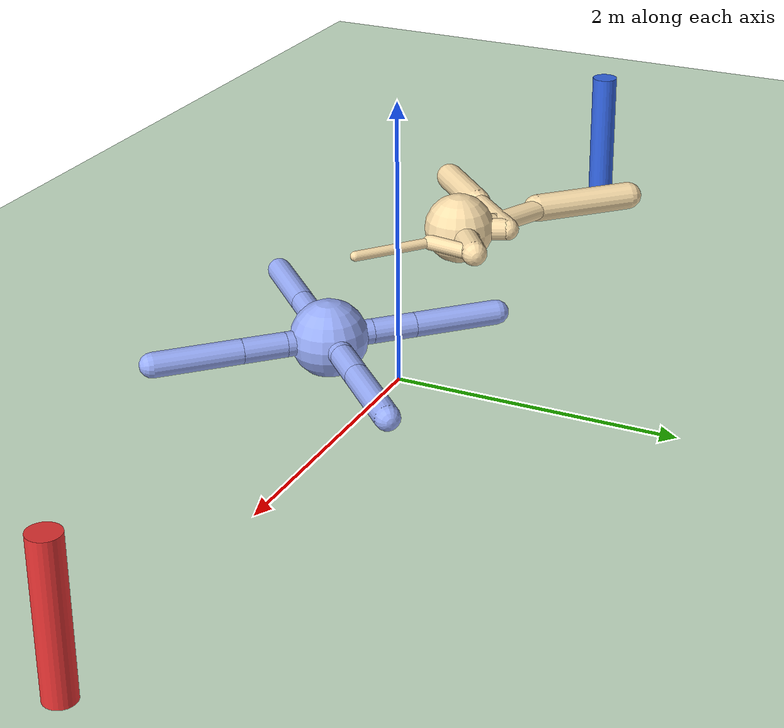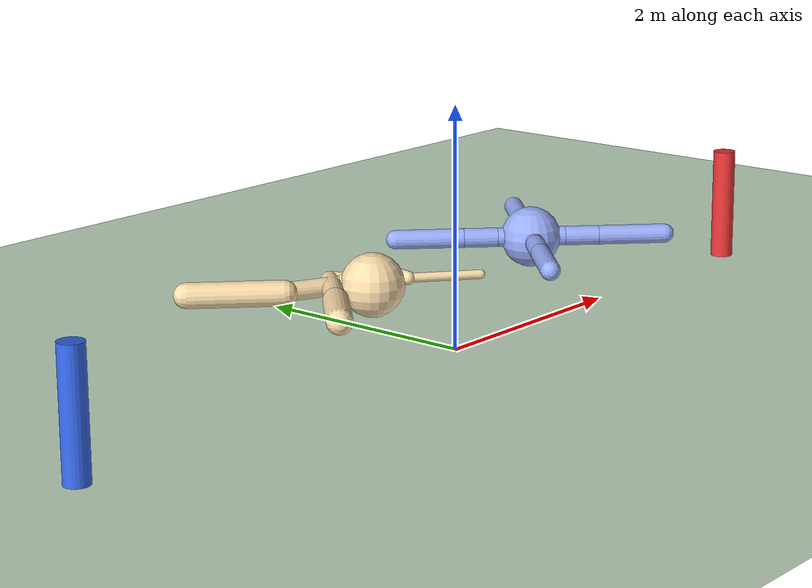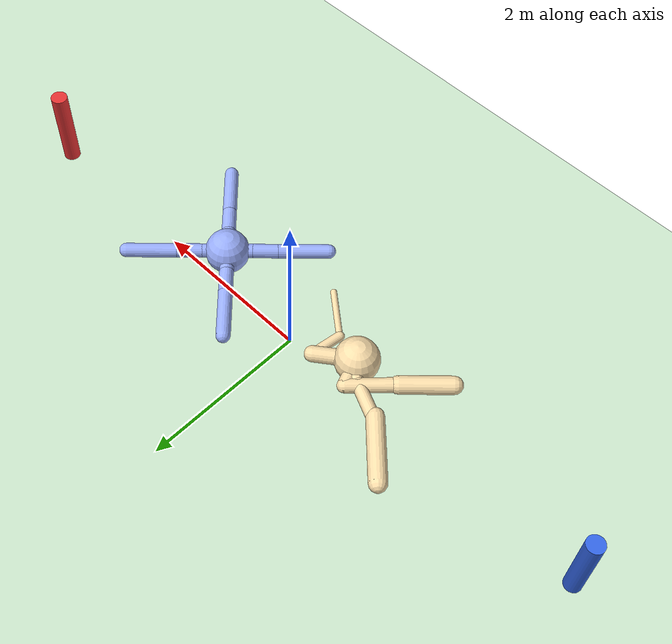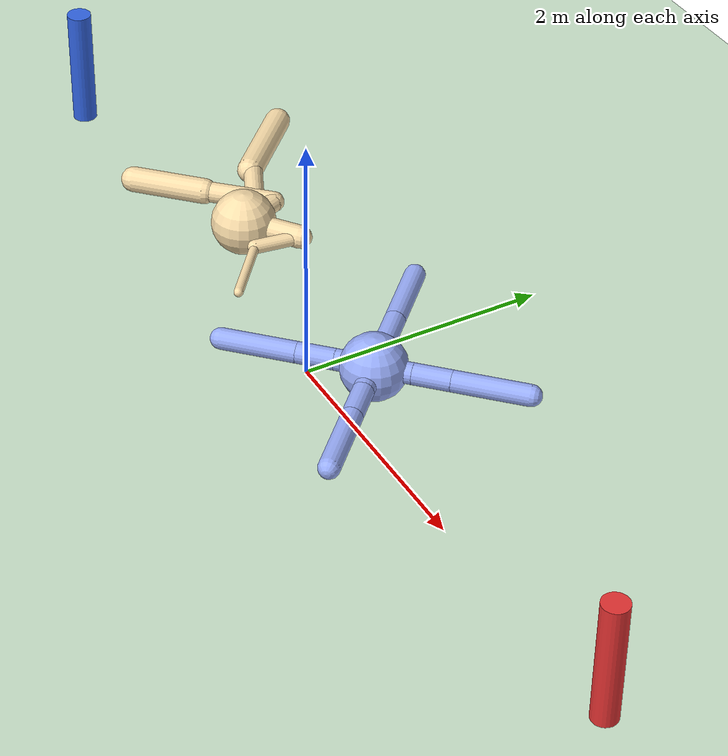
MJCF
<mujoco model="rtg_ant">
  <compiler angle="degree" coordinate="local" inertiafromgeom="true"/>
  <option integrator="RK4" timestep="0.003" solver="PGS" iterations="1000"/>
  <default>
    <joint armature="1" damping="1" limited="true"/>
    <geom conaffinity="0" condim="3" density="5.0" friction="1 0.5 0.5" margin="0.01" rgba="0.98 0.87 0.67 1" material="geom"/>
  </default>
  <visual>
    <headlight ambient=".1 .1 .1" diffuse=".6 .6 .6" specular="0.3 0.3 0.3"/>
    <map znear=".01"/>
    <quality shadowsize="1024"/>
  </visual>
  <worldbody>
    <light cutoff="100" diffuse="1 1 1" dir="-0 0 -1.3" directional="true" exponent="1" pos="0 0 1.3" specular=".1 .1 .1"/>
    <geom conaffinity="1" condim="3" name="floor" pos="0 0 0" rgba="0.8 0.9 0.8 1" size="200 200 .125" type="plane" material="grid_new"/>
    <body name="0" pos="-1 0 0.75" euler="0 0 0">
      <camera name="track" mode="trackcom" pos="0 -3 0.3" xyaxes="1 0 0 0 0 1"/>
      <geom pos="0 0 0" size="0.25" type="sphere"/>
      <joint armature="0" damping="0" limited="false" margin="0.01" name="0_joint" pos="0 0 0" range="-30 30" type="free"/>
      <body name="1" pos="0 0 0">
        <geom fromto="-0.100724 -0.09976 0 0.128309 0.127081 0" size="0.09042" type="capsule"/>
      </body>
      <body name="2" pos="0 0 0">
        <geom fromto="0.070185 -0.08096 0 -0.15752 0.181701 0" size="0.081703" type="capsule"/>
        <body name="12" pos="-0.15752 0.181701 0">
          <joint axis="0 0 1" name="12_joint" pos="0 0 0" range="-30 30" type="hinge"/>
          <geom fromto="0.001817 -0.000848 0 -0.485773 0.22673 0" size="0.074983" type="capsule"/>
          <body name="112" pos="-0.485773 0.22673 0">
            <geom fromto="0.047444 -0.047157 0 -0.473944 0.471073 0" size="0.099977" type="capsule"/>
            <joint axis="-0.707107 -0.707107 0" name="112_joint" pos="0 0 0" range="30 70" type="hinge"/>
          </body>
        </body>
        <body name="22" pos="-0.15752 0.181701 0">
          <geom fromto="-0.009602 0.005506 0 0.23278 -0.133487 0" size="0.053817" type="capsule"/>
        </body>
      </body>
      <body name="3" pos="0 0 0">
        <geom fromto="0.002293 -0.005923 0 -0.12544 0.324106 0" size="0.078374" type="capsule"/>
        <body name="13" pos="-0.12544 0.324106 0">
          <joint axis="0 0 1" name="13_joint" pos="0 0 0" range="-30 30" type="hinge"/>
          <geom fromto="0.000051 0.000054 0 -0.383303 -0.404781 0" size="0.080223" type="capsule"/>
          <body name="113" pos="-0.383303 -0.404781 0">
            <geom fromto="0.00084 0.000842 0 -0.404629 -0.405579 0" size="0.099787" type="capsule"/>
            <joint axis="0.707107 -0.707107 0" name="113_joint" pos="0 0 0" range="30 70" type="hinge"/>
          </body>
        </body>
      </body>
      <body name="4" pos="0 0 0">
        <geom fromto="-0.062583 -0.047094 0 0.378801 0.285052 0" size="0.089148" type="capsule"/>
        <body name="14" pos="0.378801 0.285052 0">
          <joint axis="0 0 1" name="14_joint" pos="0 0 0" range="-30 30" type="hinge"/>
          <geom fromto="0.000107 0.000771 0 -0.049852 -0.36098 0" size="0.054448" type="capsule"/>
          <body name="114" pos="-0.049852 -0.36098 0">
            <geom fromto="-0.000092 0.000076 0 0.443967 -0.365003 0" size="0.036141" type="capsule"/>
            <joint axis="0.707107 0.707107 0" name="114_joint" pos="0 0 0" range="30 70" type="hinge"/>
          </body>
        </body>
      </body>
    </body>
    <body name="opp_0" pos="1 0 0.75" euler="0 0 180">
      <geom pos="0 0 0" size="0.25" type="sphere" contype="0" conaffinity="1" rgba="0.60 0.68 0.98 1"/>
      <joint armature="0" damping="0" limited="false" margin="0.01" name="opp_0_joint" pos="0 0 0" range="-30 30" type="free"/>
      <body name="opp_1" pos="0 0 0">
        <geom fromto="0 0 0 0.2 0.2 0" size="0.08" type="capsule" contype="0" conaffinity="1" rgba="0.60 0.68 0.98 1"/>
        <body name="opp_11" pos="0.2 0.2 0">
          <joint axis="0 0 1" name="opp_11_joint" pos="0 0 0" range="-30 30" type="hinge"/>
          <geom fromto="0.0 0.0 0.0 0.2 0.2 0.0" size="0.08" type="capsule" contype="0" conaffinity="1" rgba="0.60 0.68 0.98 1"/>
          <body name="opp_111" pos="0.2 0.2 0">
            <geom fromto="0 0 0 0.4 0.4 0" size="0.08" type="capsule" contype="0" conaffinity="1" rgba="0.60 0.68 0.98 1"/>
            <joint axis="-0.707107 0.707107 0" name="opp_111_joint" pos="0 0 0" range="30 70" type="hinge"/>
          </body>
        </body>
      </body>
      <body name="opp_2" pos="0 0 0">
        <geom fromto="0 0 0 -0.2 0.2 0" size="0.08" type="capsule" contype="0" conaffinity="1" rgba="0.60 0.68 0.98 1"/>
        <body name="opp_12" pos="-0.2 0.2 0">
          <joint axis="0 0 1" name="opp_12_joint" pos="0 0 0" range="-30 30" type="hinge"/>
          <geom fromto="0.0 0.0 0.0 -0.2 0.2 0.0" size="0.08" type="capsule" contype="0" conaffinity="1" rgba="0.60 0.68 0.98 1"/>
          <body name="opp_112" pos="-0.2 0.2 0">
            <geom fromto="0 0 0 -0.4 0.4 0" size="0.08" type="capsule" contype="0" conaffinity="1" rgba="0.60 0.68 0.98 1"/>
            <joint axis="-0.707107 -0.707107 0" name="opp_112_joint" pos="0 0 0" range="30 70" type="hinge"/>
          </body>
        </body>
      </body>
      <body name="opp_3" pos="0 0 0">
        <geom fromto="0 0 0 -0.2 -0.2 0" size="0.08" type="capsule" contype="0" conaffinity="1" rgba="0.60 0.68 0.98 1"/>
        <body name="opp_13" pos="-0.2 -0.2 0">
          <joint axis="0 0 1" name="opp_13_joint" pos="0 0 0" range="-30 30" type="hinge"/>
          <geom fromto="0 0 0 -0.2 -0.2 0" size="0.08" type="capsule" contype="0" conaffinity="1" rgba="0.60 0.68 0.98 1"/>
          <body name="opp_113" pos="-0.2 -0.2 0">
            <geom fromto="0 0 0 -0.4 -0.4 0" size="0.08" type="capsule" contype="0" conaffinity="1" rgba="0.60 0.68 0.98 1"/>
            <joint axis="0.707107 -0.707107 0" name="opp_113_joint" pos="0 0 0" range="30 70" type="hinge"/>
          </body>
        </body>
      </body>
      <body name="opp_4" pos="0 0 0">
        <geom fromto="0 0 0 0.2 -0.2 0" size="0.08" type="capsule" contype="0" conaffinity="1" rgba="0.60 0.68 0.98 1"/>
        <body name="opp_14" pos="0.2 -0.2 0">
          <joint axis="0 0 1" name="opp_14_joint" pos="0 0 0" range="-30 30" type="hinge"/>
          <geom fromto="0 0 0 0.2 -0.2 0" size="0.08" type="capsule" contype="0" conaffinity="1" rgba="0.60 0.68 0.98 1"/>
          <body name="opp_114" pos="0.2 -0.2 0">
            <geom fromto="0 0 0 0.4 -0.4 0" size="0.08" type="capsule" contype="0" conaffinity="1" rgba="0.60 0.68 0.98 1"/>
            <joint axis="0.707107 0.707107 0" name="opp_114_joint" pos="0 0 0" range="30 70" type="hinge"/>
          </body>
        </body>
      </body>
    </body>
    <geom name="rightgoal" type="cylinder" fromto="4 0 0 4 0 1" size="0.1" contype="1" conaffinity="1" condim="3" rgba="0.9 0.2 0.2 1"/>
    <geom name="leftgoal" type="cylinder" fromto="-4 0 0 -4 0 1" size="0.1" contype="1" conaffinity="1" condim="3" rgba="0.2 0.4 0.9 1"/>
    <camera name="pitch" mode="fixed" pos="0 -11 5.5" xyaxes="1 0 0 0 0.45 0.89"/>
  </worldbody>
  <actuator>
    <motor ctrllimited="true" ctrlrange="-1.0 1.0" joint="12_joint" gear="250.529859" name="12_joint"/>
    <motor ctrllimited="true" ctrlrange="-1.0 1.0" joint="13_joint" gear="128.887542" name="13_joint"/>
    <motor ctrllimited="true" ctrlrange="-1.0 1.0" joint="14_joint" gear="172.291483" name="14_joint"/>
    <motor ctrllimited="true" ctrlrange="-1.0 1.0" joint="112_joint" gear="189.201743" name="112_joint"/>
    <motor ctrllimited="true" ctrlrange="-1.0 1.0" joint="113_joint" gear="46.584428" name="113_joint"/>
    <motor ctrllimited="true" ctrlrange="-1.0 1.0" joint="114_joint" gear="366.764937" name="114_joint"/>
    <motor ctrllimited="true" ctrlrange="-1.0 1.0" joint="opp_11_joint" gear="150" name="opp_11_joint"/>
    <motor ctrllimited="true" ctrlrange="-1.0 1.0" joint="opp_12_joint" gear="150" name="opp_12_joint"/>
    <motor ctrllimited="true" ctrlrange="-1.0 1.0" joint="opp_13_joint" gear="150" name="opp_13_joint"/>
    <motor ctrllimited="true" ctrlrange="-1.0 1.0" joint="opp_14_joint" gear="150" name="opp_14_joint"/>
    <motor ctrllimited="true" ctrlrange="-1.0 1.0" joint="opp_111_joint" gear="150" name="opp_111_joint"/>
    <motor ctrllimited="true" ctrlrange="-1.0 1.0" joint="opp_112_joint" gear="150" name="opp_112_joint"/>
    <motor ctrllimited="true" ctrlrange="-1.0 1.0" joint="opp_113_joint" gear="150" name="opp_113_joint"/>
    <motor ctrllimited="true" ctrlrange="-1.0 1.0" joint="opp_114_joint" gear="150" name="opp_114_joint"/>
  </actuator>
  <asset>
    <texture type="skybox" builtin="gradient" rgb1=".4 .5 .6" rgb2="0 0 0" width="100" height="100"/>
    <texture builtin="flat" height="1278" mark="cross" markrgb="1 1 1" name="texgeom" random="0.01" rgb1="0.8 0.6 0.4" rgb2="0.8 0.6 0.4" type="cube" width="127"/>
    <texture builtin="checker" height="100" name="texplane" rgb1="0 0 0" rgb2="0.8 0.8 0.8" type="2d" width="100"/>
    <material name="MatPlane" reflectance="0.5" shininess="1" specular="1" texrepeat="60 60" texture="texplane"/>
    <material name="geom" texture="texgeom" texuniform="true"/>
    <texture name="grid_new" type="2d" builtin="checker" rgb1=".1 .3 .2" rgb2=".2 .4 .3" width="1000" height="1000" mark="none" markrgb=".8 .6 .4"/>
    <material name="grid_new" texture="grid_new" texrepeat="0.2 0.2" texuniform="true" reflectance=".2"/>
  </asset>
</mujoco>
